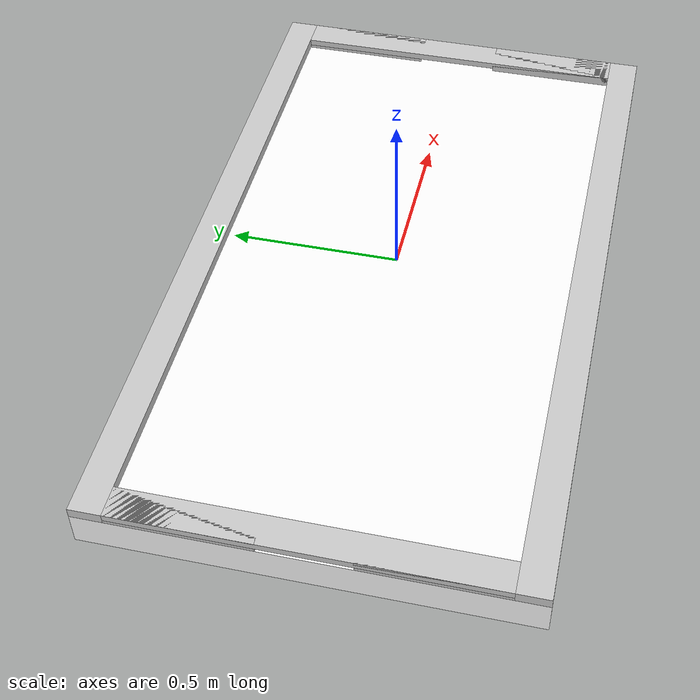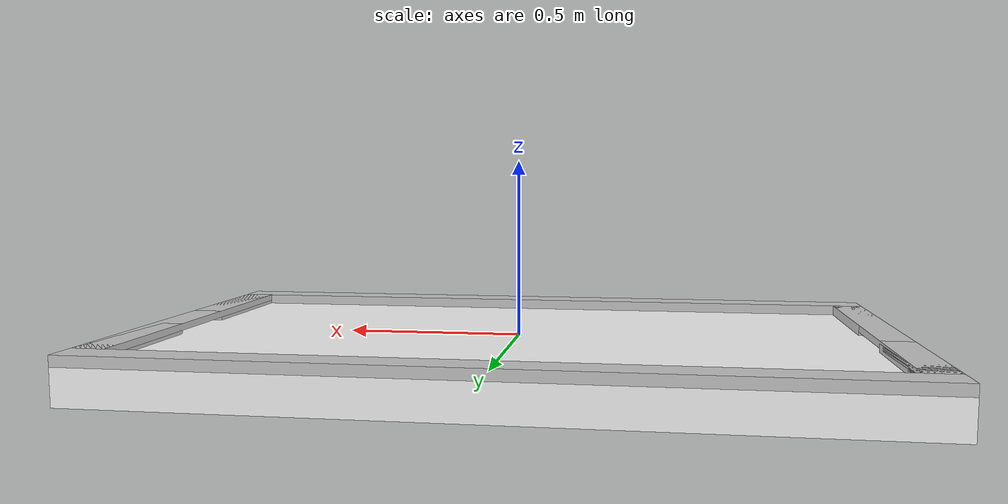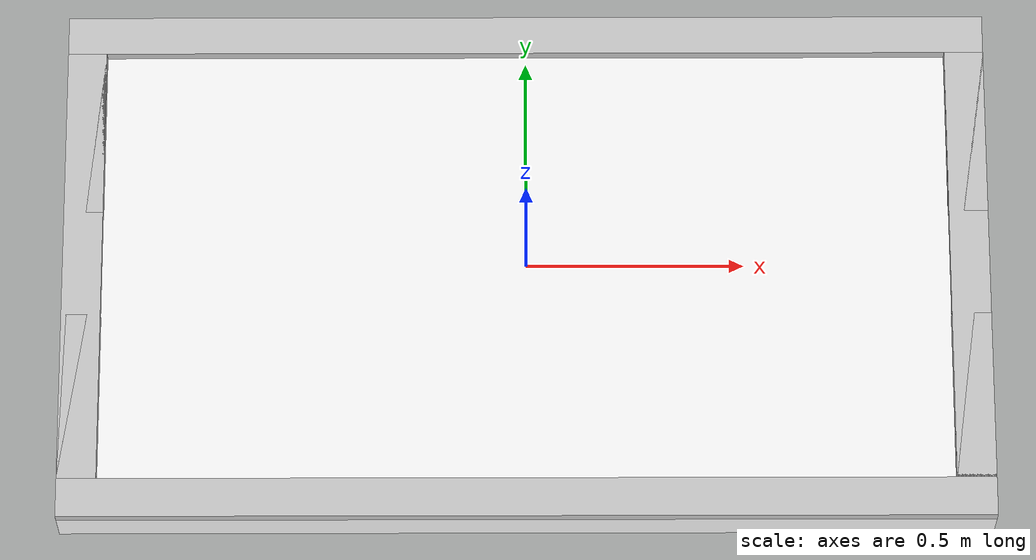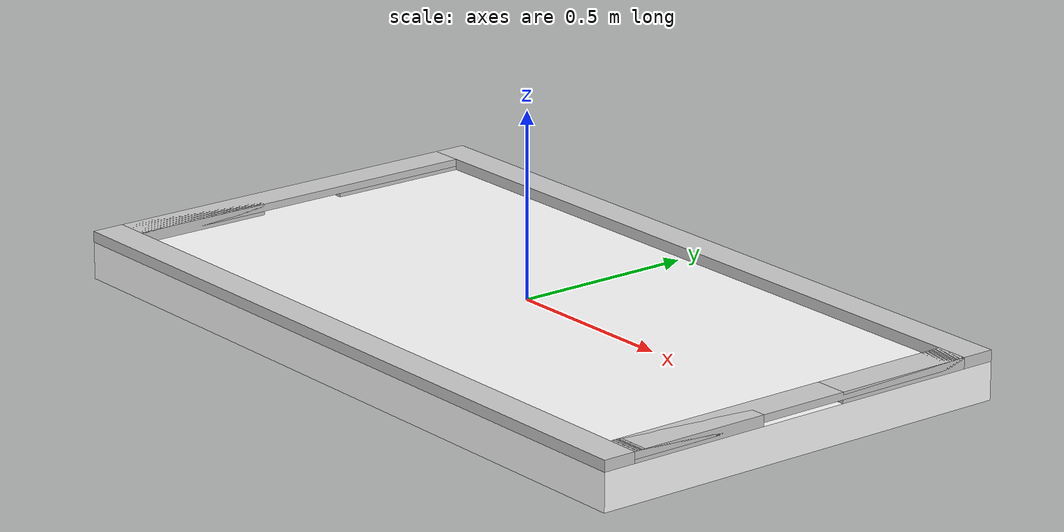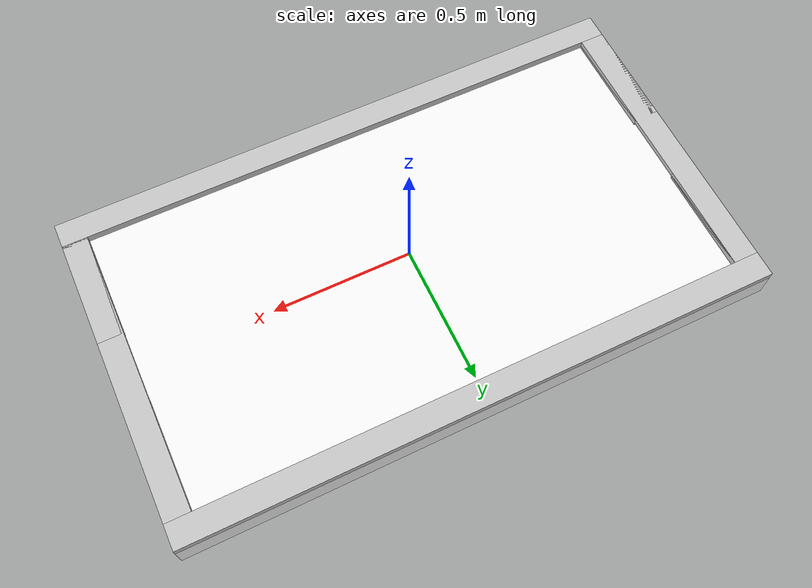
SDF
<?xml version="1.0"?>
<sdf version="1.7">
  <model name="air_hockey_table">
    <link name="table_body">
      <pose>0 0 0 0 0 0</pose>

      <visual name="surface_visual">
        <pose>0 0 -0.0505 0 0 0</pose>
        <geometry>
          <box>
            <size>2.128 1.218 0.101</size>
          </box>
        </geometry>
        <material>
          <diffuse>1 1 1 1</diffuse>
        </material>
      </visual>
      <collision name="surface_collision">
        <pose>0 0 -0.0505 0 0 0</pose>
        <geometry>
          <box>
            <size>2.128 1.218 0.101</size>
          </box>
        </geometry>
        <surface>
          <friction>
            <ode>
              <mu>0.08</mu>
              <mu2>0.08</mu2>
            </ode>
          </friction>
        </surface>
        <drake:proximity_properties>
          <drake:compliant_hydroelastic/>
          <drake:hydroelastic_modulus>5.0e6</drake:hydroelastic_modulus>
          <drake:hunt_crossley_dissipation>0.0</drake:hunt_crossley_dissipation>
          <drake:mesh_resolution_hint>0.05</drake:mesh_resolution_hint>
          <drake:mu_dynamic>0.01</drake:mu_dynamic>
          <drake:mu_static>0.01</drake:mu_static>
        </drake:proximity_properties>
      </collision>

      <visual name="rim_left_visual">
        <pose>0 0.564 0.015 0 0 0</pose>
        <geometry><box><size>2.128 0.09 0.03</size></box></geometry>
        <material><diffuse>0.8 0.8 0.8 1</diffuse></material>
      </visual>
      <collision name="rim_left_collision">
        <pose>0 0.564 0.015 0 0 0</pose>
        <geometry><box><size>2.128 0.09 0.03</size></box></geometry>
      </collision>

      <visual name="rim_right_visual">
        <pose>0 -0.564 0.015 0 0 0</pose>
        <geometry><box><size>2.128 0.09 0.03</size></box></geometry>
        <material><diffuse>0.8 0.8 0.8 1</diffuse></material>
      </visual>
      <collision name="rim_right_collision">
        <pose>0 -0.564 0.015 0 0 0</pose>
        <geometry><box><size>2.128 0.09 0.03</size></box></geometry>
      </collision>

      <visual name="rim_top_home">
        <pose>-1.019 0 0.02 0 0 0</pose>
        <geometry><box><size>0.09 1.038 0.02</size></box></geometry>
        <material><diffuse>0.8 0.8 0.8 1</diffuse></material>
      </visual>
      <collision name="rim_top_home_col">
        <pose>-1.019 0 0.02 0 0 0</pose>
        <geometry><box><size>0.09 1.038 0.02</size></box></geometry>
      </collision>

      <visual name="rim_top_away">
        <pose>1.019 0 0.02 0 0 0</pose>
        <geometry><box><size>0.09 1.038 0.02</size></box></geometry>
        <material><diffuse>0.8 0.8 0.8 1</diffuse></material>
      </visual>
      <collision name="rim_top_away_col">
        <pose>1.019 0 0.02 0 0 0</pose>
        <geometry><box><size>0.09 1.038 0.02</size></box></geometry>
      </collision>

      <collision name="corner_home_l">
        <pose>1.019 0.322 0.015 0 0 0</pose>
        <geometry><box><size>0.09 0.394 0.03</size></box></geometry>
      </collision>
      <collision name="corner_home_r">
        <pose>1.019 -0.322 0.015 0 0 0</pose>
        <geometry><box><size>0.09 0.394 0.03</size></box></geometry>
      </collision>
      <collision name="corner_away_l">
        <pose>-1.019 0.322 0.015 0 0 0</pose>
        <geometry><box><size>0.09 0.394 0.03</size></box></geometry>
      </collision>
      <collision name="corner_away_r">
        <pose>-1.019 -0.322 0.015 0 0 0</pose>
        <geometry><box><size>0.09 0.394 0.03</size></box></geometry>
      </collision>

      <visual name="corner_home_l_vis">
        <pose>1.019 0.322 0.015 0 0 0</pose>
        <geometry><box><size>0.09 0.394 0.03</size></box></geometry>
        <material><diffuse>0.8 0.8 0.8 1</diffuse></material>
      </visual>
      <visual name="corner_home_r_vis">
        <pose>1.019 -0.322 0.015 0 0 0</pose>
        <geometry><box><size>0.09 0.394 0.03</size></box></geometry>
        <material><diffuse>0.8 0.8 0.8 1</diffuse></material>
      </visual>
      <visual name="corner_away_l_vis">
        <pose>-1.019 0.322 0.015 0 0 0</pose>
        <geometry><box><size>0.09 0.394 0.03</size></box></geometry>
        <material><diffuse>0.8 0.8 0.8 1</diffuse></material>
      </visual>
      <visual name="corner_away_r_vis">
        <pose>-1.019 -0.322 0.015 0 0 0</pose>
        <geometry><box><size>0.09 0.394 0.03</size></box></geometry>
        <material><diffuse>0.8 0.8 0.8 1</diffuse></material>
      </visual>

    </link>
  </model>
</sdf>
